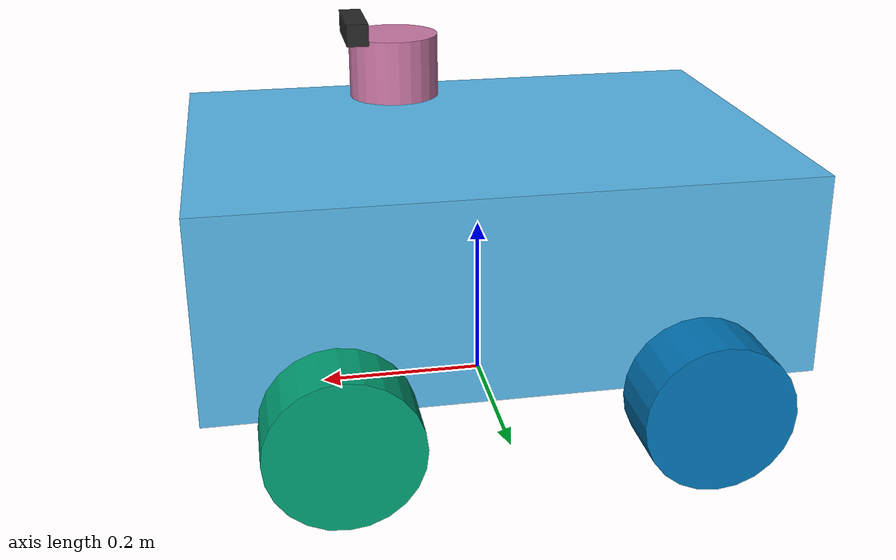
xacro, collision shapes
<?xml version="1.0"?>
<robot name="bunker" xmlns:xacro="http://www.ros.org/wiki/xacro">

  <xacro:include filename="$(find velodyne_description)/urdf/VLP-16.urdf.xacro"/>
  <xacro:include filename="$(find bunker_description)/urdf/realsense_d435.urdf.xacro"/>

  <xacro:arg name="gpu" default="false"/>
  <xacro:property name="gpu" value="$(arg gpu)"/>

  <xacro:property name="base_length" value="0.690"/>
  <xacro:property name="base_width"  value="0.490"/>
  <xacro:property name="base_height" value="0.235"/>
  <xacro:property name="base_mass"   value="60.0"/>

  <xacro:property name="wheel_radius" value="0.085"/>
  <xacro:property name="wheel_width"  value="0.080"/>
  <xacro:property name="wheel_mass"   value="2.0"/>
  <xacro:property name="wheel_x"      value="0.200"/>
  <xacro:property name="wheel_y"      value="0.295"/>

  <!-- ======= BASE FOOTPRINT ======= -->
  <link name="base_footprint"/>

  <joint name="base_footprint_joint" type="fixed">
    <parent link="base_footprint"/>
    <child  link="base_link"/>
    <origin xyz="0 0 ${base_height/2 + wheel_radius}" rpy="0 0 0"/>
  </joint>

  <!-- ======= CHÂSSIS PRINCIPAL ======= -->
  <link name="base_link">
    <!-- Visuel : mesh DAE coloré (uniquement pour le rendu) -->
    <visual>
      <!-- rpy="${pi/2} 0 0" : convertit Y_UP (export DAE) → Z_UP (ROS)
           xyz Z=+0.008 : aligne le bas du mesh (Y_dae_min=-0.2106) avec le sol (Z=-0.2025 en base_link) -->
      <origin xyz="-0.1 -0.05 0.008" rpy="${pi/2} 0 0"/>
      <geometry>
        <mesh filename="package://bunker_description/meshes/Bunker_colored_scaled.obj"/>
      </geometry>
    </visual>

    <!-- Collision : boîte simple (inchangée) -->
    <collision>
      <geometry><box size="${base_length} ${base_width} ${base_height}"/></geometry>
    </collision>

    <!-- Inertie (inchangée) -->
    <inertial>
      <mass value="${base_mass}"/>
      <inertia
        ixx="${base_mass*(base_width*base_width+base_height*base_height)/12}"
        iyy="${base_mass*(base_length*base_length+base_height*base_height)/12}"
        izz="${base_mass*(base_length*base_length+base_width*base_width)/12}"
        ixy="0" ixz="0" iyz="0"/>
    </inertial>
  </link>

  <!-- ======= ROUES (collision + inertie nécessaires pour la physique) ======= -->
  <xacro:macro name="wheel" params="name x_pos y_pos">
    <link name="${name}_link">
      <collision>
        <geometry><cylinder radius="${wheel_radius}" length="${wheel_width}"/></geometry>
        <origin rpy="${pi/2} 0 0"/>
      </collision>
      <inertial>
        <mass value="${wheel_mass}"/>
        <inertia
          ixx="${wheel_mass*(3*wheel_radius*wheel_radius+wheel_width*wheel_width)/12}"
          iyy="${wheel_mass*(3*wheel_radius*wheel_radius+wheel_width*wheel_width)/12}"
          izz="${wheel_mass*wheel_radius*wheel_radius/2}"
          ixy="0" ixz="0" iyz="0"/>
      </inertial>
    </link>
    <joint name="${name}_joint" type="continuous">
      <parent link="base_link"/>
      <child  link="${name}_link"/>
      <origin xyz="${x_pos} ${y_pos} ${-base_height/2}" rpy="0 0 0"/>
      <axis xyz="0 1 0"/>
    </joint>
  </xacro:macro>

  <xacro:wheel name="front_left_wheel"  x_pos=" ${wheel_x}" y_pos=" ${wheel_y}"/>
  <xacro:wheel name="front_right_wheel" x_pos=" ${wheel_x}" y_pos="-${wheel_y}"/>
  <xacro:wheel name="rear_left_wheel"   x_pos="-${wheel_x}" y_pos=" ${wheel_y}"/>
  <xacro:wheel name="rear_right_wheel"  x_pos="-${wheel_x}" y_pos="-${wheel_y}"/>

  <!-- ======= VELODYNE ======= -->
  <xacro:VLP-16
    parent="base_link"
    name="velodyne"
    topic="/velodyne_points"
    hz="10"
    samples="1800"
    gpu="${gpu}">
    <origin xyz="0.1 0 ${base_height/2 + 0.05}" rpy="0 0 0"/>
  </xacro:VLP-16>

  <!-- ======= IMU ======= -->
  <joint name="imu_joint" type="fixed">
    <parent link="base_link"/>
    <child  link="imu_link"/>
    <origin xyz="0 0 0" rpy="0 0 0"/>
  </joint>

  <link name="imu_link">
    <inertial>
      <mass value="0.01"/>
      <inertia ixx="1e-6" iyy="1e-6" izz="1e-6" ixy="0" ixz="0" iyz="0"/>
    </inertial>
  </link>

  <gazebo reference="imu_link">
    <gravity>true</gravity>
    <sensor name="imu_sensor" type="imu">
      <always_on>true</always_on>
      <update_rate>200</update_rate>
      <visualize>false</visualize>
      <plugin filename="libgazebo_ros_imu_sensor.so" name="imu_plugin">
        <topicName>/imu/data</topicName>
        <bodyName>imu_link</bodyName>
        <updateRateHZ>200</updateRateHZ>
        <gaussianNoise>0.01</gaussianNoise>
        <xyzOffset>0 0 0</xyzOffset>
        <rpyOffset>0 0 0</rpyOffset>
        <frameName>imu_link</frameName>
        <initialOrientationAsReference>false</initialOrientationAsReference>
      </plugin>
    </sensor>
  </gazebo>

  <!-- ======= CAMÉRA REALSENSE D435 ======= -->
  <xacro:realsense_d435 prefix="camera" parent="base_link">
    <origin xyz="0.145 0.0 0.2475" rpy="0 0 0"/>
  </xacro:realsense_d435>

  <gazebo>
    <plugin name="ground_truth_3d" filename="libgazebo_ros_p3d.so">
      <updateRate>30</updateRate>
      <bodyName>base_footprint</bodyName>
      <topicName>/ground_truth_odom</topicName>
      <frameName>world</frameName>
      <xyzOffset>0 0 0</xyzOffset>
      <rpyOffset>0 0 0</rpyOffset>
      <gaussianNoise>0</gaussianNoise>
    </plugin>
  </gazebo>

  <!-- ======= PLUGIN SKID-STEER ======= -->
  <gazebo>
    <plugin name="skid_steer_drive" filename="libgazebo_ros_skid_steer_drive.so">
      <updateRate>50</updateRate>
      <robotNamespace>/</robotNamespace>
      <leftFrontJoint>front_left_wheel_joint</leftFrontJoint>
      <rightFrontJoint>front_right_wheel_joint</rightFrontJoint>
      <leftRearJoint>rear_left_wheel_joint</leftRearJoint>
      <rightRearJoint>rear_right_wheel_joint</rightRearJoint>
      <wheelSeparation>${wheel_y * 2}</wheelSeparation>
      <wheelDiameter>${wheel_radius * 2}</wheelDiameter>
      <robotBaseFrame>base_footprint</robotBaseFrame>
      <torque>20</torque>
      <commandTopic>cmd_vel</commandTopic>
      <odometryTopic>odom</odometryTopic>
      <odometryFrame>odom</odometryFrame>
      <broadcastTF>false</broadcastTF>
      <covariance_x>0.0001</covariance_x>
      <covariance_y>0.0001</covariance_y>
      <covariance_yaw>0.01</covariance_yaw>
    </plugin>
  </gazebo>

</robot>

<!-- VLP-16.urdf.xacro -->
<robot xmlns:xacro="http://www.ros.org/wiki/xacro" name="VLP-16">
  <xacro:property name="M_PI" value="3.1415926535897931" />
  <xacro:macro name="VLP-16" params="*origin is_sim:=true parent:=base_link name:=velodyne tf_prefix:='' topic:=/velodyne_points organize_cloud:=false hz:=10 lasers:=16 samples:=1875 collision_range:=0.3 min_range:=0.0 max_range:=100.0 noise:=0.008 min_angle:=-${M_PI} max_angle:=${M_PI} gpu:=false">

    <joint name="${name}_base_mount_joint" type="fixed">
      <xacro:insert_block name="origin" />
      <parent link="${parent}"/>
      <child link="${name}_base_link"/>
    </joint>

    <link name="${name}_base_link">
      <inertial>
        <mass value="0.83"/>
        <origin xyz="0 0 0.03585"/>
        <inertia ixx="${(0.83 * (3.0*0.0516*0.0516 + 0.0717*0.0717)) / 12.0}" ixy="0" ixz="0"
          iyy="${(0.83 * (3.0*0.0516*0.0516 + 0.0717*0.0717)) / 12.0}" iyz="0"
          izz="${0.5 * 0.83 * (0.0516*0.0516)}"/>
      </inertial>
      <visual>
        <geometry>
          <mesh filename="package://velodyne_description/meshes/VLP16_base_1.dae" />
        </geometry>
      </visual>
      <visual>
        <geometry>
          <mesh filename="package://velodyne_description/meshes/VLP16_base_2.dae" />
        </geometry>
      </visual>
      <collision>
        <origin rpy="0 0 0" xyz="0 0 0.03585"/>
        <geometry>
          <cylinder radius="0.0516" length="0.0717"/>
        </geometry>
      </collision>
    </link>

    <joint name="${name}_base_scan_joint" type="fixed" >
      <origin xyz="0 0 0.0377" rpy="0 0 0" />
      <parent link="${name}_base_link" />
      <child link="${name}"/>
    </joint>

    <link name="${name}">
      <inertial>
        <mass value="0.01"/>
        <origin xyz="0 0 0"/>
        <inertia ixx="1e-7" ixy="0" ixz="0" iyy="1e-7" iyz="0" izz="1e-7"/>
      </inertial>
      <visual>
        <origin xyz="0 0 -0.0377" />
        <geometry>
          <mesh filename="package://velodyne_description/meshes/VLP16_scan.dae" />
        </geometry>
      </visual>
      <collision>
        <geometry>
          <sphere radius="0"/>
        </geometry>
      </collision>
    </link>

    <!-- Gazebo requires the velodyne_gazebo_plugins package -->
    <xacro:if value="${is_sim}">
        <gazebo reference="${name}">
            <xacro:if value="${gpu}">
                <sensor type="gpu_ray" name="${name}-VLP16">
                <pose>0 0 0 0 0 0</pose>
                <visualize>false</visualize>
                <update_rate>${hz}</update_rate>
                <ray>
                    <scan>
                    <horizontal>
                        <samples>${samples}</samples>
                        <resolution>1</resolution>
                        <min_angle>${min_angle}</min_angle>
                        <max_angle>${max_angle}</max_angle>
                    </horizontal>
                    <vertical>
                        <samples>${lasers}</samples>
                        <resolution>1</resolution>
                        <min_angle>-${15.0*M_PI/180.0}</min_angle>
                        <max_angle> ${15.0*M_PI/180.0}</max_angle>
                    </vertical>
                    </scan>
                    <range>
                    <min>${collision_range}</min>
                    <max>${max_range+1}</max>
                    <resolution>0.001</resolution>
                    </range>
                    <noise>
                    <type>gaussian</type>
                    <mean>0.0</mean>
                    <stddev>0.0</stddev>
                    </noise>
                </ray>
                <plugin name="gazebo_ros_laser_controller" filename="libgazebo_ros_velodyne_laser.so">
                    <ros>
                    <namespace>/${name}</namespace>
                    <remapping>~/out:=${topic}</remapping>
                    </ros>
                    <tf_prefix>${tf_prefix}</tf_prefix>
                    <frame_name>${name}</frame_name>
                    <organize_cloud>${organize_cloud}</organize_cloud>
                    <min_range>${min_range}</min_range>
                    <max_range>${max_range}</max_range>
                    <gaussian_noise>${noise}</gaussian_noise>
                </plugin>
                </sensor>
            </xacro:if>
            <xacro:unless value="${gpu}">
                <sensor type="ray" name="${name}-VLP16">
                <pose>0 0 0 0 0 0</pose>
                <visualize>false</visualize>
                <update_rate>${hz}</update_rate>
                <ray>
                    <scan>
                    <horizontal>
                        <samples>${samples}</samples>
                        <resolution>1</resolution>
                        <min_angle>${min_angle}</min_angle>
                        <max_angle>${max_angle}</max_angle>
                    </horizontal>
                    <vertical>
                        <samples>${lasers}</samples>
                        <resolution>1</resolution>
                        <min_angle>-${15.0*M_PI/180.0}</min_angle>
                        <max_angle> ${15.0*M_PI/180.0}</max_angle>
                    </vertical>
                    </scan>
                    <range>
                    <min>${collision_range}</min>
                    <max>${max_range+1}</max>
                    <resolution>0.001</resolution>
                    </range>
                    <noise>
                    <type>gaussian</type>
                    <mean>0.0</mean>
                    <stddev>0.0</stddev>
                    </noise>
                </ray>
                <plugin name="gazebo_ros_laser_controller" filename="libgazebo_ros_velodyne_laser.so">
                    <ros>
                    <namespace>/${name}</namespace>
                    <remapping>~/out:=${topic}</remapping>
                    </ros>
                    <tf_prefix>${tf_prefix}</tf_prefix>
                    <frame_name>${name}</frame_name>
                    <organize_cloud>${organize_cloud}</organize_cloud>
                    <min_range>${min_range}</min_range>
                    <max_range>${max_range}</max_range>
                    <gaussian_noise>${noise}</gaussian_noise>
                </plugin>
                </sensor>
            </xacro:unless>
        </gazebo>
    </xacro:if>

  </xacro:macro>
</robot>

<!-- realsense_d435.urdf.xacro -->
<robot xmlns:xacro="http://www.ros.org/wiki/xacro">

  <xacro:macro name="realsense_d435" params="prefix:=camera parent *origin">

    <!--  DIMENSIONS PHYSIQUES D435                                        -->
    <!--  90 mm (L) × 25 mm (H) × 25 mm (P)                              -->
    <xacro:property name="d435_length" value="0.090"/>
    <xacro:property name="d435_height" value="0.025"/>
    <xacro:property name="d435_depth"  value="0.025"/>
    <xacro:property name="d435_mass"   value="0.072"/>

    <!--  LINK : camera_link  (point de montage)                          -->
    <link name="${prefix}_link">
      <visual>
        <origin xyz="0 0 0" rpy="0 0 0"/>
        <geometry>
          <!-- Corps simplifié — boîte aux dimensions réelles du D435 -->
          <box size="${d435_depth} ${d435_length} ${d435_height}"/>
        </geometry>
        <material name="d435_grey">
          <color rgba="0.15 0.15 0.15 1.0"/>
        </material>
      </visual>
      <collision>
        <origin xyz="0 0 0" rpy="0 0 0"/>
        <geometry>
          <box size="${d435_depth} ${d435_length} ${d435_height}"/>
        </geometry>
      </collision>
      <inertial>
        <mass value="${d435_mass}"/>
        <inertia
          ixx="${d435_mass*(d435_length*d435_length + d435_height*d435_height)/12}"
          iyy="${d435_mass*(d435_depth*d435_depth  + d435_height*d435_height)/12}"
          izz="${d435_mass*(d435_depth*d435_depth  + d435_length*d435_length)/12}"
          ixy="0" ixz="0" iyz="0"/>
      </inertial>
    </link>

    <!-- Joint : parent → camera_link -->
    <joint name="${prefix}_joint" type="fixed">
      <parent link="${parent}"/>
      <child  link="${prefix}_link"/>
      <xacro:insert_block name="origin"/>
    </joint>

    <!--  FRAME OPTIQUE — couleur                                         -->
    <!--  Convention ROS optical : z-avant, x-droite, y-bas              -->
    <!--  Rotation depuis camera_link (x-avant, y-gauche, z-haut) :      -->
    <!--    rpy = -π/2  0  -π/2                                           -->
    <link name="${prefix}_color_optical_frame"/>
    <joint name="${prefix}_color_optical_joint" type="fixed">
      <parent link="${prefix}_link"/>
      <child  link="${prefix}_color_optical_frame"/>
      <origin xyz="0 0 0" rpy="${-pi/2} 0 ${-pi/2}"/>
    </joint>

    <!--  FRAME OPTIQUE — profondeur                                      -->
    <!--  Légèrement offset vers la droite par rapport au RGB sur le D435 -->
    <!--  (0.015 m ≈ distance entre les capteurs IR et RGB)               -->
    <link name="${prefix}_depth_optical_frame"/>
    <joint name="${prefix}_depth_optical_joint" type="fixed">
      <parent link="${prefix}_link"/>
      <child  link="${prefix}_depth_optical_frame"/>
      <origin xyz="0 -0.015 0" rpy="${-pi/2} 0 ${-pi/2}"/>
    </joint>

    <!--  PLUGIN GAZEBO — libgazebo_ros_openni_kinect.so                  -->
    <!--  Simule RGB + Depth + PointCloud en un seul plugin               -->
    <gazebo reference="${prefix}_link">
      <sensor type="depth" name="${prefix}_depth_sensor">
        <update_rate>15.0</update_rate>
        <camera name="${prefix}">

          <!-- FOV profondeur D435 : 87° horizontal -->
          <horizontal_fov>${87.0 * pi / 180.0}</horizontal_fov>
          <image>
            <format>R8G8B8</format>
            <width>640</width>
            <height>480</height>
          </image>
          <clip>
            <near>0.105</near>   <!-- distance min D435 : 10.5 cm -->
            <far>10.0</far>      <!-- distance max D435 : 10 m    -->
          </clip>
          <noise>
            <type>gaussian</type>
            <mean>0.0</mean>
            <stddev>0.005</stddev>  <!-- bruit typique D435 en simulation -->
          </noise>

        </camera>

        <plugin name="${prefix}_controller" filename="libgazebo_ros_openni_kinect.so">
          <!-- Baseline entre les deux capteurs IR du D435 -->
          <baseline>0.05</baseline>
          <alwaysOn>true</alwaysOn>
          <updateRate>15.0</updateRate>
          <cameraName>${prefix}</cameraName>

          <!-- Topics RGB -->
          <imageTopicName>/${prefix}/color/image_raw</imageTopicName>
          <cameraInfoTopicName>/${prefix}/color/camera_info</cameraInfoTopicName>

          <!-- Topics profondeur -->
          <depthImageTopicName>/${prefix}/depth/image_rect_raw</depthImageTopicName>
          <depthImageCameraInfoTopicName>/${prefix}/depth/camera_info</depthImageCameraInfoTopicName>

          <!-- PointCloud XYZRGB -->
          <pointCloudTopicName>/${prefix}/depth/color/points</pointCloudTopicName>

          <!-- Frame optique pour le header des messages -->
          <frameName>${prefix}_color_optical_frame</frameName>

          <!-- Plage du nuage de points -->
          <pointCloudCutoff>0.105</pointCloudCutoff>
          <pointCloudCutoffMax>10.0</pointCloudCutoffMax>

          <!-- Distorsion nulle (caméra simulée idéale) -->
          <distortionK1>0</distortionK1>
          <distortionK2>0</distortionK2>
          <distortionK3>0</distortionK3>
          <distortionT1>0</distortionT1>
          <distortionT2>0</distortionT2>
          <CxPrime>0</CxPrime>
          <Cx>0</Cx>
          <Cy>0</Cy>
          <focalLength>0</focalLength>
          <hackBaseline>0</hackBaseline>
        </plugin>

      </sensor>
    </gazebo>

  </xacro:macro>
</robot>
